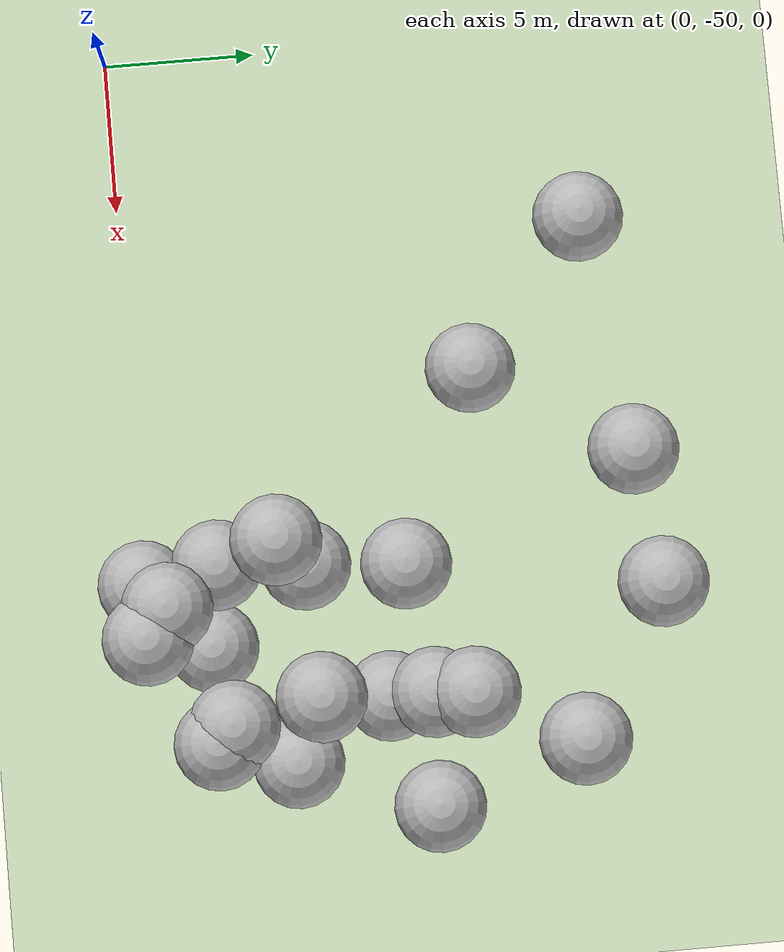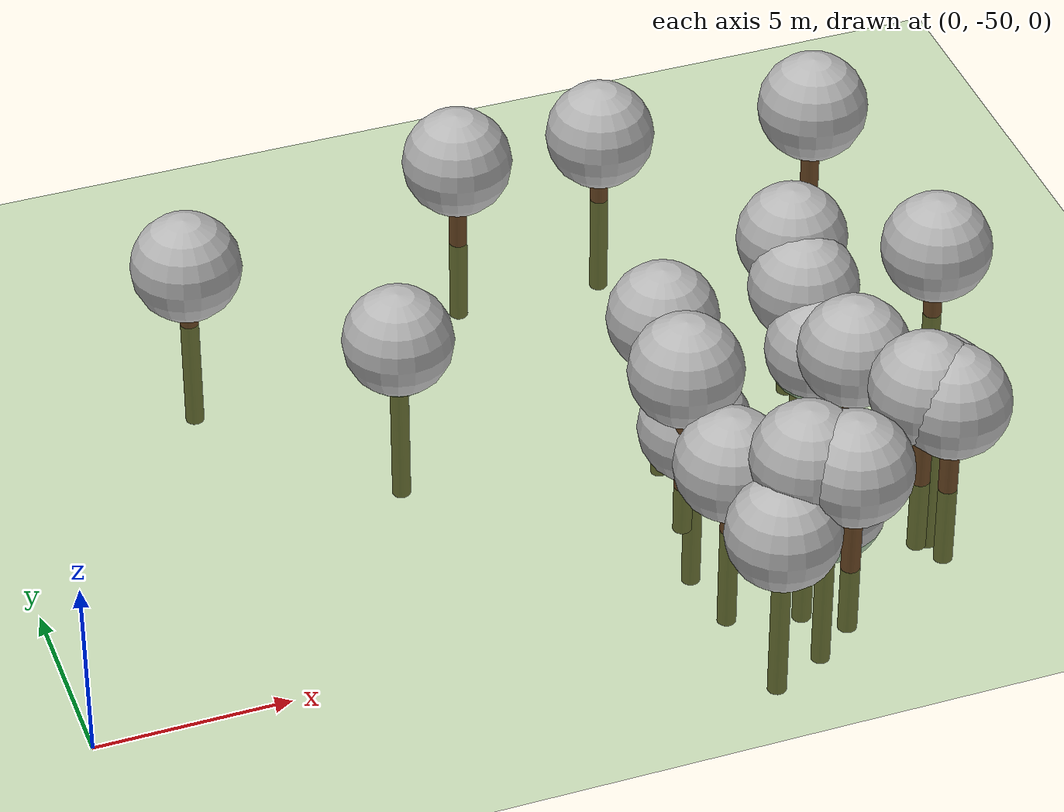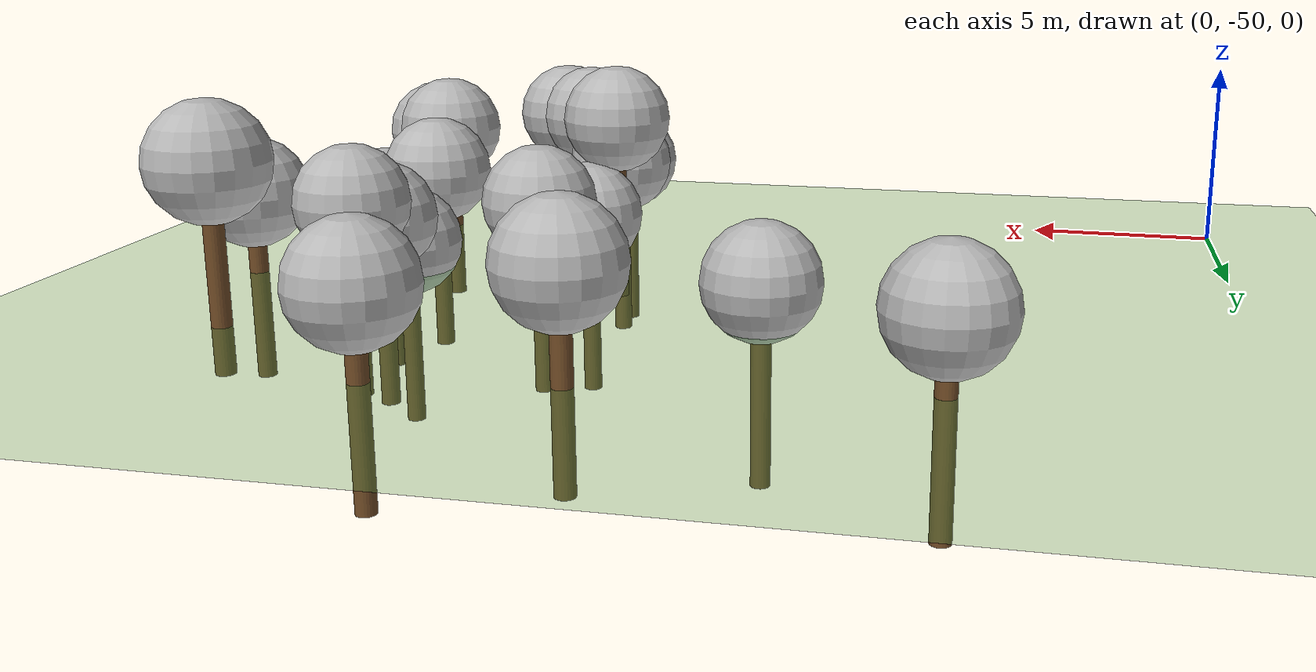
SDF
<sdf version="1.7">
 <world name="default">
  <model name="tree_simple484">
   <static>1</static>
   <link name="link">
    <pose>0 0 0.1 0 -0 0</pose>
    <collision name="collision_trunk">
     <pose>0 0 2 0 -0 0</pose>
     <geometry><cylinder><radius>0.25</radius><length>4</length></cylinder></geometry>
    </collision>
    <collision name="collision_treetop">
     <pose>0 0 5.2 0 -0 0</pose>
     <geometry><sphere><radius>1.5</radius></sphere></geometry>
    </collision>
    <visual name="trunk">
     <pose>0 0 2 0 -0 0</pose>
     <geometry><cylinder><radius>0.25</radius><length>4</length></cylinder></geometry>
     <material>
      <script>
       <uri>model://tree_simple/scripts</uri>
       <uri>model://tree_simple/materials/textures</uri>
       <name>TreeSimple/Trunk</name>
      </script>
     </material>
    </visual>
    <visual name="treetop">
     <pose>0 0 5.2 0 -0 0</pose>
     <geometry><sphere><radius>1.5</radius></sphere></geometry>
     <material>
      <script>
       <uri>model://tree_simple/scripts</uri>
       <uri>model://tree_simple/materials/textures</uri>
       <name>TreeSimple/Treetop</name>
      </script>
     </material>
    </visual>
   </link>
   <pose>19.8605 -47.9062 -4.91163 0 -0 0</pose>
  </model>
  <model name="tree_simple464">
   <static>1</static>
   <link name="link">
    <pose>0 0 0.1 0 -0 0</pose>
    <collision name="collision_trunk">
     <pose>0 0 2 0 -0 0</pose>
     <geometry><cylinder><radius>0.25</radius><length>4</length></cylinder></geometry>
    </collision>
    <collision name="collision_treetop">
     <pose>0 0 5.2 0 -0 0</pose>
     <geometry><sphere><radius>1.5</radius></sphere></geometry>
    </collision>
    <visual name="trunk">
     <pose>0 0 2 0 -0 0</pose>
     <geometry><cylinder><radius>0.25</radius><length>4</length></cylinder></geometry>
     <material>
      <script>
       <uri>model://tree_simple/scripts</uri>
       <uri>model://tree_simple/materials/textures</uri>
       <name>TreeSimple/Trunk</name>
      </script>
     </material>
    </visual>
    <visual name="treetop">
     <pose>0 0 5.2 0 -0 0</pose>
     <geometry><sphere><radius>1.5</radius></sphere></geometry>
     <material>
      <script>
       <uri>model://tree_simple/scripts</uri>
       <uri>model://tree_simple/materials/textures</uri>
       <name>TreeSimple/Treetop</name>
      </script>
     </material>
    </visual>
   </link>
   <pose>18.6971 -49.1924 -2.0659 0 -0 0</pose>
  </model>
  <model name="tree_simple456">
   <static>1</static>
   <link name="link">
    <pose>0 0 0.1 0 -0 0</pose>
    <collision name="collision_trunk">
     <pose>0 0 2 0 -0 0</pose>
     <geometry><cylinder><radius>0.25</radius><length>4</length></cylinder></geometry>
    </collision>
    <collision name="collision_treetop">
     <pose>0 0 5.2 0 -0 0</pose>
     <geometry><sphere><radius>1.5</radius></sphere></geometry>
    </collision>
    <visual name="trunk">
     <pose>0 0 2 0 -0 0</pose>
     <geometry><cylinder><radius>0.25</radius><length>4</length></cylinder></geometry>
     <material>
      <script>
       <uri>model://tree_simple/scripts</uri>
       <uri>model://tree_simple/materials/textures</uri>
       <name>TreeSimple/Trunk</name>
      </script>
     </material>
    </visual>
    <visual name="treetop">
     <pose>0 0 5.2 0 -0 0</pose>
     <geometry><sphere><radius>1.5</radius></sphere></geometry>
     <material>
      <script>
       <uri>model://tree_simple/scripts</uri>
       <uri>model://tree_simple/materials/textures</uri>
       <name>TreeSimple/Treetop</name>
      </script>
     </material>
    </visual>
   </link>
   <pose>23.2077 -47.8592 -2.47613 0 -0 0</pose>
  </model>
  <model name="tree_simple430">
   <static>1</static>
   <link name="link">
    <pose>0 0 0.1 0 -0 0</pose>
    <collision name="collision_trunk">
     <pose>0 0 2 0 -0 0</pose>
     <geometry><cylinder><radius>0.25</radius><length>4</length></cylinder></geometry>
    </collision>
    <collision name="collision_treetop">
     <pose>0 0 5.2 0 -0 0</pose>
     <geometry><sphere><radius>1.5</radius></sphere></geometry>
    </collision>
    <visual name="trunk">
     <pose>0 0 2 0 -0 0</pose>
     <geometry><cylinder><radius>0.25</radius><length>4</length></cylinder></geometry>
     <material>
      <script>
       <uri>model://tree_simple/scripts</uri>
       <uri>model://tree_simple/materials/textures</uri>
       <name>TreeSimple/Trunk</name>
      </script>
     </material>
    </visual>
    <visual name="treetop">
     <pose>0 0 5.2 0 -0 0</pose>
     <geometry><sphere><radius>1.5</radius></sphere></geometry>
     <material>
      <script>
       <uri>model://tree_simple/scripts</uri>
       <uri>model://tree_simple/materials/textures</uri>
       <name>TreeSimple/Treetop</name>
      </script>
     </material>
    </visual>
   </link>
   <pose>19.6675 -49.8829 -2.12216 0 -0 0</pose>
  </model>
  <model name="tree_simple427">
   <static>1</static>
   <link name="link">
    <pose>0 0 0.1 0 -0 0</pose>
    <collision name="collision_trunk">
     <pose>0 0 2 0 -0 0</pose>
     <geometry><cylinder><radius>0.25</radius><length>4</length></cylinder></geometry>
    </collision>
    <collision name="collision_treetop">
     <pose>0 0 5.2 0 -0 0</pose>
     <geometry><sphere><radius>1.5</radius></sphere></geometry>
    </collision>
    <visual name="trunk">
     <pose>0 0 2 0 -0 0</pose>
     <geometry><cylinder><radius>0.25</radius><length>4</length></cylinder></geometry>
     <material>
      <script>
       <uri>model://tree_simple/scripts</uri>
       <uri>model://tree_simple/materials/textures</uri>
       <name>TreeSimple/Trunk</name>
      </script>
     </material>
    </visual>
    <visual name="treetop">
     <pose>0 0 5.2 0 -0 0</pose>
     <geometry><sphere><radius>1.5</radius></sphere></geometry>
     <material>
      <script>
       <uri>model://tree_simple/scripts</uri>
       <uri>model://tree_simple/materials/textures</uri>
       <name>TreeSimple/Treetop</name>
      </script>
     </material>
    </visual>
   </link>
   <pose>17.822 -41.375 -3.11146 0 -0 0</pose>
  </model>
  <model name="tree_simple423">
   <static>1</static>
   <link name="link">
    <pose>0 0 0.1 0 -0 0</pose>
    <collision name="collision_trunk">
     <pose>0 0 2 0 -0 0</pose>
     <geometry><cylinder><radius>0.25</radius><length>4</length></cylinder></geometry>
    </collision>
    <collision name="collision_treetop">
     <pose>0 0 5.2 0 -0 0</pose>
     <geometry><sphere><radius>1.5</radius></sphere></geometry>
    </collision>
    <visual name="trunk">
     <pose>0 0 2 0 -0 0</pose>
     <geometry><cylinder><radius>0.25</radius><length>4</length></cylinder></geometry>
     <material>
      <script>
       <uri>model://tree_simple/scripts</uri>
       <uri>model://tree_simple/materials/textures</uri>
       <name>TreeSimple/Trunk</name>
      </script>
     </material>
    </visual>
    <visual name="treetop">
     <pose>0 0 5.2 0 -0 0</pose>
     <geometry><sphere><radius>1.5</radius></sphere></geometry>
     <material>
      <script>
       <uri>model://tree_simple/scripts</uri>
       <uri>model://tree_simple/materials/textures</uri>
       <name>TreeSimple/Treetop</name>
      </script>
     </material>
    </visual>
   </link>
   <pose>22.6667 -47.3463 -2.28853 0 -0 0</pose>
  </model>
  <model name="tree_simple329">
   <static>1</static>
   <link name="link">
    <pose>0 0 0.1 0 -0 0</pose>
    <collision name="collision_trunk">
     <pose>0 0 2 0 -0 0</pose>
     <geometry><cylinder><radius>0.25</radius><length>4</length></cylinder></geometry>
    </collision>
    <collision name="collision_treetop">
     <pose>0 0 5.2 0 -0 0</pose>
     <geometry><sphere><radius>1.5</radius></sphere></geometry>
    </collision>
    <visual name="trunk">
     <pose>0 0 2 0 -0 0</pose>
     <geometry><cylinder><radius>0.25</radius><length>4</length></cylinder></geometry>
     <material>
      <script>
       <uri>model://tree_simple/scripts</uri>
       <uri>model://tree_simple/materials/textures</uri>
       <name>TreeSimple/Trunk</name>
      </script>
     </material>
    </visual>
    <visual name="treetop">
     <pose>0 0 5.2 0 -0 0</pose>
     <geometry><sphere><radius>1.5</radius></sphere></geometry>
     <material>
      <script>
       <uri>model://tree_simple/scripts</uri>
       <uri>model://tree_simple/materials/textures</uri>
       <name>TreeSimple/Treetop</name>
      </script>
     </material>
    </visual>
   </link>
   <pose>22.0384 -40.786 -3.5884 0 -0 0</pose>
  </model>
  <model name="tree_simple281">
   <static>1</static>
   <link name="link">
    <pose>0 0 0.1 0 -0 0</pose>
    <collision name="collision_trunk">
     <pose>0 0 2 0 -0 0</pose>
     <geometry><cylinder><radius>0.25</radius><length>4</length></cylinder></geometry>
    </collision>
    <collision name="collision_treetop">
     <pose>0 0 5.2 0 -0 0</pose>
     <geometry><sphere><radius>1.5</radius></sphere></geometry>
    </collision>
    <visual name="trunk">
     <pose>0 0 2 0 -0 0</pose>
     <geometry><cylinder><radius>0.25</radius><length>4</length></cylinder></geometry>
     <material>
      <script>
       <uri>model://tree_simple/scripts</uri>
       <uri>model://tree_simple/materials/textures</uri>
       <name>TreeSimple/Trunk</name>
      </script>
     </material>
    </visual>
    <visual name="treetop">
     <pose>0 0 5.2 0 -0 0</pose>
     <geometry><sphere><radius>1.5</radius></sphere></geometry>
     <material>
      <script>
       <uri>model://tree_simple/scripts</uri>
       <uri>model://tree_simple/materials/textures</uri>
       <name>TreeSimple/Treetop</name>
      </script>
     </material>
    </visual>
   </link>
   <pose>17.7632 -49.9798 -3.5802 0 -0 0</pose>
  </model>
  <model name="tree_simple233">
   <static>1</static>
   <link name="link">
    <pose>0 0 0.1 0 -0 0</pose>
    <collision name="collision_trunk">
     <pose>0 0 2 0 -0 0</pose>
     <geometry><cylinder><radius>0.25</radius><length>4</length></cylinder></geometry>
    </collision>
    <collision name="collision_treetop">
     <pose>0 0 5.2 0 -0 0</pose>
     <geometry><sphere><radius>1.5</radius></sphere></geometry>
    </collision>
    <visual name="trunk">
     <pose>0 0 2 0 -0 0</pose>
     <geometry><cylinder><radius>0.25</radius><length>4</length></cylinder></geometry>
     <material>
      <script>
       <uri>model://tree_simple/scripts</uri>
       <uri>model://tree_simple/materials/textures</uri>
       <name>TreeSimple/Trunk</name>
      </script>
     </material>
    </visual>
    <visual name="treetop">
     <pose>0 0 5.2 0 -0 0</pose>
     <geometry><sphere><radius>1.5</radius></sphere></geometry>
     <material>
      <script>
       <uri>model://tree_simple/scripts</uri>
       <uri>model://tree_simple/materials/textures</uri>
       <name>TreeSimple/Treetop</name>
      </script>
     </material>
    </visual>
   </link>
   <pose>21.9291 -44.4761 -3.02297 0 -0 0</pose>
  </model>
  <model name="tree_simple215">
   <static>1</static>
   <link name="link">
    <pose>0 0 0.1 0 -0 0</pose>
    <collision name="collision_trunk">
     <pose>0 0 2 0 -0 0</pose>
     <geometry><cylinder><radius>0.25</radius><length>4</length></cylinder></geometry>
    </collision>
    <collision name="collision_treetop">
     <pose>0 0 5.2 0 -0 0</pose>
     <geometry><sphere><radius>1.5</radius></sphere></geometry>
    </collision>
    <visual name="trunk">
     <pose>0 0 2 0 -0 0</pose>
     <geometry><cylinder><radius>0.25</radius><length>4</length></cylinder></geometry>
     <material>
      <script>
       <uri>model://tree_simple/scripts</uri>
       <uri>model://tree_simple/materials/textures</uri>
       <name>TreeSimple/Trunk</name>
      </script>
     </material>
    </visual>
    <visual name="treetop">
     <pose>0 0 5.2 0 -0 0</pose>
     <geometry><sphere><radius>1.5</radius></sphere></geometry>
     <material>
      <script>
       <uri>model://tree_simple/scripts</uri>
       <uri>model://tree_simple/materials/textures</uri>
       <name>TreeSimple/Treetop</name>
      </script>
     </material>
    </visual>
   </link>
   <pose>6.81084 -34.7298 -3.42603 0 -0 0</pose>
  </model>
  <model name="tree_simple169">
   <static>1</static>
   <link name="link">
    <pose>0 0 0.1 0 -0 0</pose>
    <collision name="collision_trunk">
     <pose>0 0 2 0 -0 0</pose>
     <geometry><cylinder><radius>0.25</radius><length>4</length></cylinder></geometry>
    </collision>
    <collision name="collision_treetop">
     <pose>0 0 5.2 0 -0 0</pose>
     <geometry><sphere><radius>1.5</radius></sphere></geometry>
    </collision>
    <visual name="trunk">
     <pose>0 0 2 0 -0 0</pose>
     <geometry><cylinder><radius>0.25</radius><length>4</length></cylinder></geometry>
     <material>
      <script>
       <uri>model://tree_simple/scripts</uri>
       <uri>model://tree_simple/materials/textures</uri>
       <name>TreeSimple/Trunk</name>
      </script>
     </material>
    </visual>
    <visual name="treetop">
     <pose>0 0 5.2 0 -0 0</pose>
     <geometry><sphere><radius>1.5</radius></sphere></geometry>
     <material>
      <script>
       <uri>model://tree_simple/scripts</uri>
       <uri>model://tree_simple/materials/textures</uri>
       <name>TreeSimple/Treetop</name>
      </script>
     </material>
    </visual>
   </link>
   <pose>25.7711 -40.9499 -3.11054 0 -0 0</pose>
  </model>
  <model name="tree_simple167">
   <static>1</static>
   <link name="link">
    <pose>0 0 0.1 0 -0 0</pose>
    <collision name="collision_trunk">
     <pose>0 0 2 0 -0 0</pose>
     <geometry><cylinder><radius>0.25</radius><length>4</length></cylinder></geometry>
    </collision>
    <collision name="collision_treetop">
     <pose>0 0 5.2 0 -0 0</pose>
     <geometry><sphere><radius>1.5</radius></sphere></geometry>
    </collision>
    <visual name="trunk">
     <pose>0 0 2 0 -0 0</pose>
     <geometry><cylinder><radius>0.25</radius><length>4</length></cylinder></geometry>
     <material>
      <script>
       <uri>model://tree_simple/scripts</uri>
       <uri>model://tree_simple/materials/textures</uri>
       <name>TreeSimple/Trunk</name>
      </script>
     </material>
    </visual>
    <visual name="treetop">
     <pose>0 0 5.2 0 -0 0</pose>
     <geometry><sphere><radius>1.5</radius></sphere></geometry>
     <material>
      <script>
       <uri>model://tree_simple/scripts</uri>
       <uri>model://tree_simple/materials/textures</uri>
       <name>TreeSimple/Treetop</name>
      </script>
     </material>
    </visual>
   </link>
   <pose>14.7725 -33.6842 -2.61894 0 -0 0</pose>
  </model>
  <model name="tree_simple153">
   <static>1</static>
   <link name="link">
    <pose>0 0 0.1 0 -0 0</pose>
    <collision name="collision_trunk">
     <pose>0 0 2 0 -0 0</pose>
     <geometry><cylinder><radius>0.25</radius><length>4</length></cylinder></geometry>
    </collision>
    <collision name="collision_treetop">
     <pose>0 0 5.2 0 -0 0</pose>
     <geometry><sphere><radius>1.5</radius></sphere></geometry>
    </collision>
    <visual name="trunk">
     <pose>0 0 2 0 -0 0</pose>
     <geometry><cylinder><radius>0.25</radius><length>4</length></cylinder></geometry>
     <material>
      <script>
       <uri>model://tree_simple/scripts</uri>
       <uri>model://tree_simple/materials/textures</uri>
       <name>TreeSimple/Trunk</name>
      </script>
     </material>
    </visual>
    <visual name="treetop">
     <pose>0 0 5.2 0 -0 0</pose>
     <geometry><sphere><radius>1.5</radius></sphere></geometry>
     <material>
      <script>
       <uri>model://tree_simple/scripts</uri>
       <uri>model://tree_simple/materials/textures</uri>
       <name>TreeSimple/Treetop</name>
      </script>
     </material>
    </visual>
   </link>
   <pose>24.0971 -36.1585 -1.32524 0 -0 0</pose>
  </model>
  <model name="tree_simple139">
   <static>1</static>
   <link name="link">
    <pose>0 0 0.1 0 -0 0</pose>
    <collision name="collision_trunk">
     <pose>0 0 2 0 -0 0</pose>
     <geometry><cylinder><radius>0.25</radius><length>4</length></cylinder></geometry>
    </collision>
    <collision name="collision_treetop">
     <pose>0 0 5.2 0 -0 0</pose>
     <geometry><sphere><radius>1.5</radius></sphere></geometry>
    </collision>
    <visual name="trunk">
     <pose>0 0 2 0 -0 0</pose>
     <geometry><cylinder><radius>0.25</radius><length>4</length></cylinder></geometry>
     <material>
      <script>
       <uri>model://tree_simple/scripts</uri>
       <uri>model://tree_simple/materials/textures</uri>
       <name>TreeSimple/Trunk</name>
      </script>
     </material>
    </visual>
    <visual name="treetop">
     <pose>0 0 5.2 0 -0 0</pose>
     <geometry><sphere><radius>1.5</radius></sphere></geometry>
     <material>
      <script>
       <uri>model://tree_simple/scripts</uri>
       <uri>model://tree_simple/materials/textures</uri>
       <name>TreeSimple/Treetop</name>
      </script>
     </material>
    </visual>
   </link>
   <pose>16.8537 -45.5058 -1.54622 0 -0 0</pose>
  </model>
  <model name="tree_simple123">
   <static>1</static>
   <link name="link">
    <pose>0 0 0.1 0 -0 0</pose>
    <collision name="collision_trunk">
     <pose>0 0 2 0 -0 0</pose>
     <geometry><cylinder><radius>0.25</radius><length>4</length></cylinder></geometry>
    </collision>
    <collision name="collision_treetop">
     <pose>0 0 5.2 0 -0 0</pose>
     <geometry><sphere><radius>1.5</radius></sphere></geometry>
    </collision>
    <visual name="trunk">
     <pose>0 0 2 0 -0 0</pose>
     <geometry><cylinder><radius>0.25</radius><length>4</length></cylinder></geometry>
     <material>
      <script>
       <uri>model://tree_simple/scripts</uri>
       <uri>model://tree_simple/materials/textures</uri>
       <name>TreeSimple/Trunk</name>
      </script>
     </material>
    </visual>
    <visual name="treetop">
     <pose>0 0 5.2 0 -0 0</pose>
     <geometry><sphere><radius>1.5</radius></sphere></geometry>
     <material>
      <script>
       <uri>model://tree_simple/scripts</uri>
       <uri>model://tree_simple/materials/textures</uri>
       <name>TreeSimple/Treetop</name>
      </script>
     </material>
    </visual>
   </link>
   <pose>17.3351 -47.5264 -3.17482 0 -0 0</pose>
  </model>
  <model name="tree_simple115">
   <static>1</static>
   <link name="link">
    <pose>0 0 0.1 0 -0 0</pose>
    <collision name="collision_trunk">
     <pose>0 0 2 0 -0 0</pose>
     <geometry><cylinder><radius>0.25</radius><length>4</length></cylinder></geometry>
    </collision>
    <collision name="collision_treetop">
     <pose>0 0 5.2 0 -0 0</pose>
     <geometry><sphere><radius>1.5</radius></sphere></geometry>
    </collision>
    <visual name="trunk">
     <pose>0 0 2 0 -0 0</pose>
     <geometry><cylinder><radius>0.25</radius><length>4</length></cylinder></geometry>
     <material>
      <script>
       <uri>model://tree_simple/scripts</uri>
       <uri>model://tree_simple/materials/textures</uri>
       <name>TreeSimple/Trunk</name>
      </script>
     </material>
    </visual>
    <visual name="treetop">
     <pose>0 0 5.2 0 -0 0</pose>
     <geometry><sphere><radius>1.5</radius></sphere></geometry>
     <material>
      <script>
       <uri>model://tree_simple/scripts</uri>
       <uri>model://tree_simple/materials/textures</uri>
       <name>TreeSimple/Treetop</name>
      </script>
     </material>
    </visual>
   </link>
   <pose>23.9239 -45.4027 -4.13399 0 -0 0</pose>
  </model>
  <model name="tree_simple96">
   <static>1</static>
   <link name="link">
    <pose>0 0 0.1 0 -0 0</pose>
    <collision name="collision_trunk">
     <pose>0 0 2 0 -0 0</pose>
     <geometry><cylinder><radius>0.25</radius><length>4</length></cylinder></geometry>
    </collision>
    <collision name="collision_treetop">
     <pose>0 0 5.2 0 -0 0</pose>
     <geometry><sphere><radius>1.5</radius></sphere></geometry>
    </collision>
    <visual name="trunk">
     <pose>0 0 2 0 -0 0</pose>
     <geometry><cylinder><radius>0.25</radius><length>4</length></cylinder></geometry>
     <material>
      <script>
       <uri>model://tree_simple/scripts</uri>
       <uri>model://tree_simple/materials/textures</uri>
       <name>TreeSimple/Trunk</name>
      </script>
     </material>
    </visual>
    <visual name="treetop">
     <pose>0 0 5.2 0 -0 0</pose>
     <geometry><sphere><radius>1.5</radius></sphere></geometry>
     <material>
      <script>
       <uri>model://tree_simple/scripts</uri>
       <uri>model://tree_simple/materials/textures</uri>
       <name>TreeSimple/Treetop</name>
      </script>
     </material>
    </visual>
   </link>
   <pose>17.4749 -44.6575 -4.17568 0 -0 0</pose>
  </model>
  <model name="tree_simple52">
   <static>1</static>
   <link name="link">
    <pose>0 0 0.1 0 -0 0</pose>
    <collision name="collision_trunk">
     <pose>0 0 2 0 -0 0</pose>
     <geometry><cylinder><radius>0.25</radius><length>4</length></cylinder></geometry>
    </collision>
    <collision name="collision_treetop">
     <pose>0 0 5.2 0 -0 0</pose>
     <geometry><sphere><radius>1.5</radius></sphere></geometry>
    </collision>
    <visual name="trunk">
     <pose>0 0 2 0 -0 0</pose>
     <geometry><cylinder><radius>0.25</radius><length>4</length></cylinder></geometry>
     <material>
      <script>
       <uri>model://tree_simple/scripts</uri>
       <uri>model://tree_simple/materials/textures</uri>
       <name>TreeSimple/Trunk</name>
      </script>
     </material>
    </visual>
    <visual name="treetop">
     <pose>0 0 5.2 0 -0 0</pose>
     <geometry><sphere><radius>1.5</radius></sphere></geometry>
     <material>
      <script>
       <uri>model://tree_simple/scripts</uri>
       <uri>model://tree_simple/materials/textures</uri>
       <name>TreeSimple/Treetop</name>
      </script>
     </material>
    </visual>
   </link>
   <pose>22.1955 -39.5072 -2.91537 0 -0 0</pose>
  </model>
  <model name="tree_simple42">
   <static>1</static>
   <link name="link">
    <pose>0 0 0.1 0 -0 0</pose>
    <collision name="collision_trunk">
     <pose>0 0 2 0 -0 0</pose>
     <geometry><cylinder><radius>0.25</radius><length>4</length></cylinder></geometry>
    </collision>
    <collision name="collision_treetop">
     <pose>0 0 5.2 0 -0 0</pose>
     <geometry><sphere><radius>1.5</radius></sphere></geometry>
    </collision>
    <visual name="trunk">
     <pose>0 0 2 0 -0 0</pose>
     <geometry><cylinder><radius>0.25</radius><length>4</length></cylinder></geometry>
     <material>
      <script>
       <uri>model://tree_simple/scripts</uri>
       <uri>model://tree_simple/materials/textures</uri>
       <name>TreeSimple/Trunk</name>
      </script>
     </material>
    </visual>
    <visual name="treetop">
     <pose>0 0 5.2 0 -0 0</pose>
     <geometry><sphere><radius>1.5</radius></sphere></geometry>
     <material>
      <script>
       <uri>model://tree_simple/scripts</uri>
       <uri>model://tree_simple/materials/textures</uri>
       <name>TreeSimple/Treetop</name>
      </script>
     </material>
    </visual>
   </link>
   <pose>19.1195 -33.0751 -3.14527 0 -0 0</pose>
  </model>
  <model name="tree_simple22">
   <static>1</static>
   <link name="link">
    <pose>0 0 0.1 0 -0 0</pose>
    <collision name="collision_trunk">
     <pose>0 0 2 0 -0 0</pose>
     <geometry><cylinder><radius>0.25</radius><length>4</length></cylinder></geometry>
    </collision>
    <collision name="collision_treetop">
     <pose>0 0 5.2 0 -0 0</pose>
     <geometry><sphere><radius>1.5</radius></sphere></geometry>
    </collision>
    <visual name="trunk">
     <pose>0 0 2 0 -0 0</pose>
     <geometry><cylinder><radius>0.25</radius><length>4</length></cylinder></geometry>
     <material>
      <script>
       <uri>model://tree_simple/scripts</uri>
       <uri>model://tree_simple/materials/textures</uri>
       <name>TreeSimple/Trunk</name>
      </script>
     </material>
    </visual>
    <visual name="treetop">
     <pose>0 0 5.2 0 -0 0</pose>
     <geometry><sphere><radius>1.5</radius></sphere></geometry>
     <material>
      <script>
       <uri>model://tree_simple/scripts</uri>
       <uri>model://tree_simple/materials/textures</uri>
       <name>TreeSimple/Treetop</name>
      </script>
     </material>
    </visual>
   </link>
   <pose>11.42 -38.6944 -4.19183 0 -0 0</pose>
  </model>
  <model name="tree_simple13">
   <static>1</static>
   <link name="link">
    <pose>0 0 0.1 0 -0 0</pose>
    <collision name="collision_trunk">
     <pose>0 0 2 0 -0 0</pose>
     <geometry><cylinder><radius>0.25</radius><length>4</length></cylinder></geometry>
    </collision>
    <collision name="collision_treetop">
     <pose>0 0 5.2 0 -0 0</pose>
     <geometry><sphere><radius>1.5</radius></sphere></geometry>
    </collision>
    <visual name="trunk">
     <pose>0 0 2 0 -0 0</pose>
     <geometry><cylinder><radius>0.25</radius><length>4</length></cylinder></geometry>
     <material>
      <script>
       <uri>model://tree_simple/scripts</uri>
       <uri>model://tree_simple/materials/textures</uri>
       <name>TreeSimple/Trunk</name>
      </script>
     </material>
    </visual>
    <visual name="treetop">
     <pose>0 0 5.2 0 -0 0</pose>
     <geometry><sphere><radius>1.5</radius></sphere></geometry>
     <material>
      <script>
       <uri>model://tree_simple/scripts</uri>
       <uri>model://tree_simple/materials/textures</uri>
       <name>TreeSimple/Treetop</name>
      </script>
     </material>
    </visual>
   </link>
   <pose>21.9742 -42.2363 -4.58726 0 -0 0</pose>
  </model>
  <model name="ground_plane">
   <static>1</static>
   <link name="link">
    <collision name="collision">
     <geometry><plane><normal>0 0 1</normal><size>250 250</size></plane></geometry>
     <surface><friction><ode><mu>1</mu><mu2>1</mu2></ode></friction></surface>
    </collision>
    <visual name="grass">
     <cast_shadows>0</cast_shadows>
     <geometry><plane><normal>0 0 1</normal><size>150 250</size></plane></geometry>
     <material>
      <script><uri>file://media/materials/scripts/Gazebo.material</uri><name>Gazebo/Grass</name></script>
     </material>
    </visual>
   </link>
  </model>
 </world>
</sdf>
